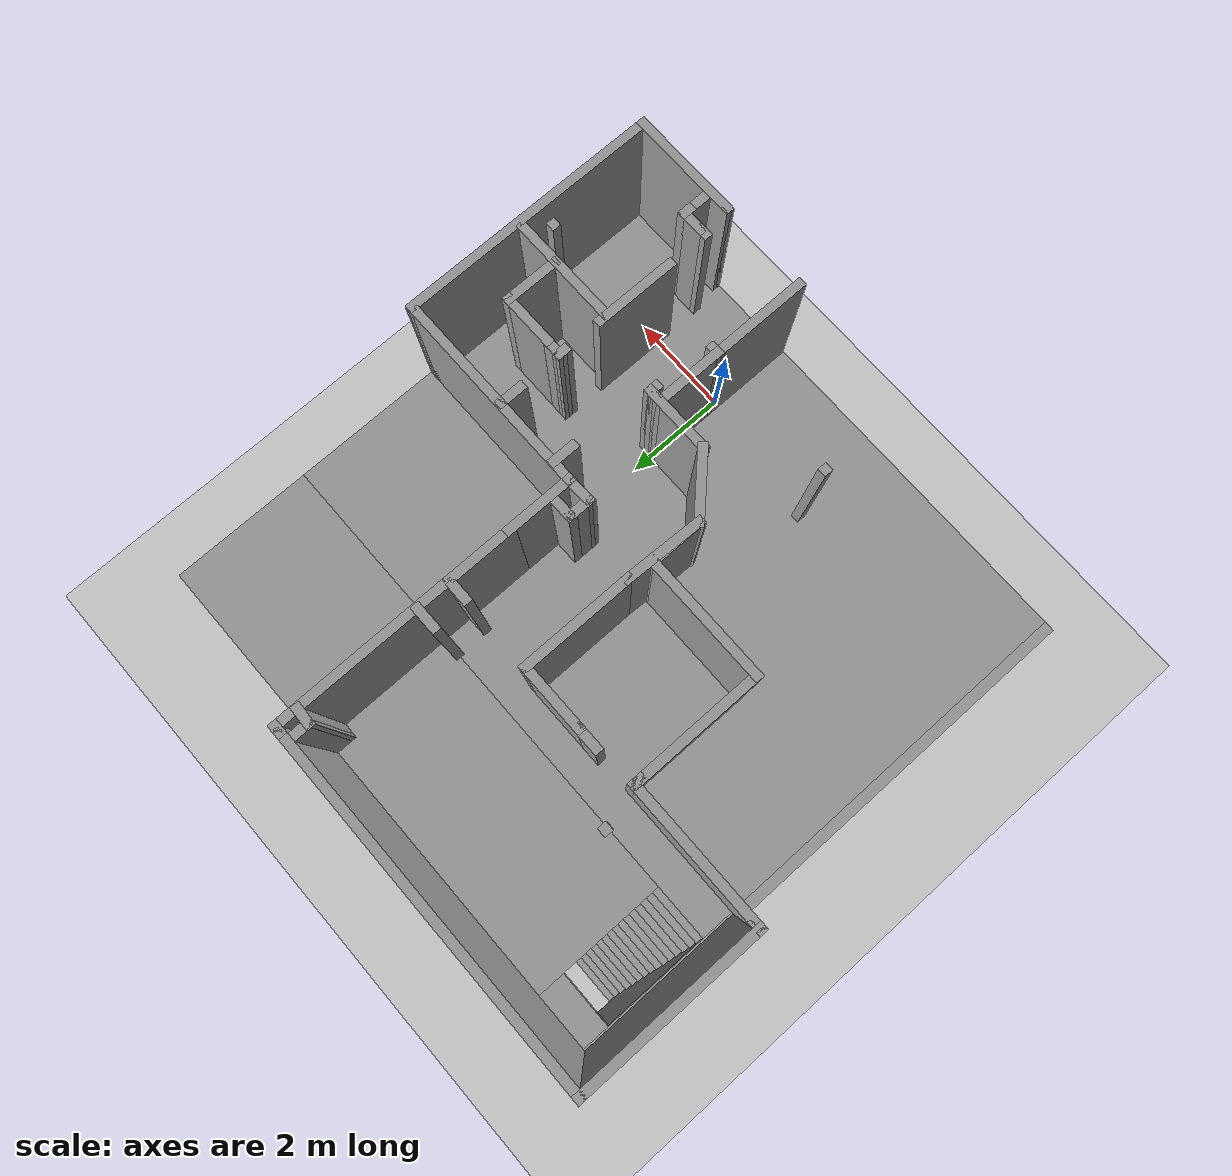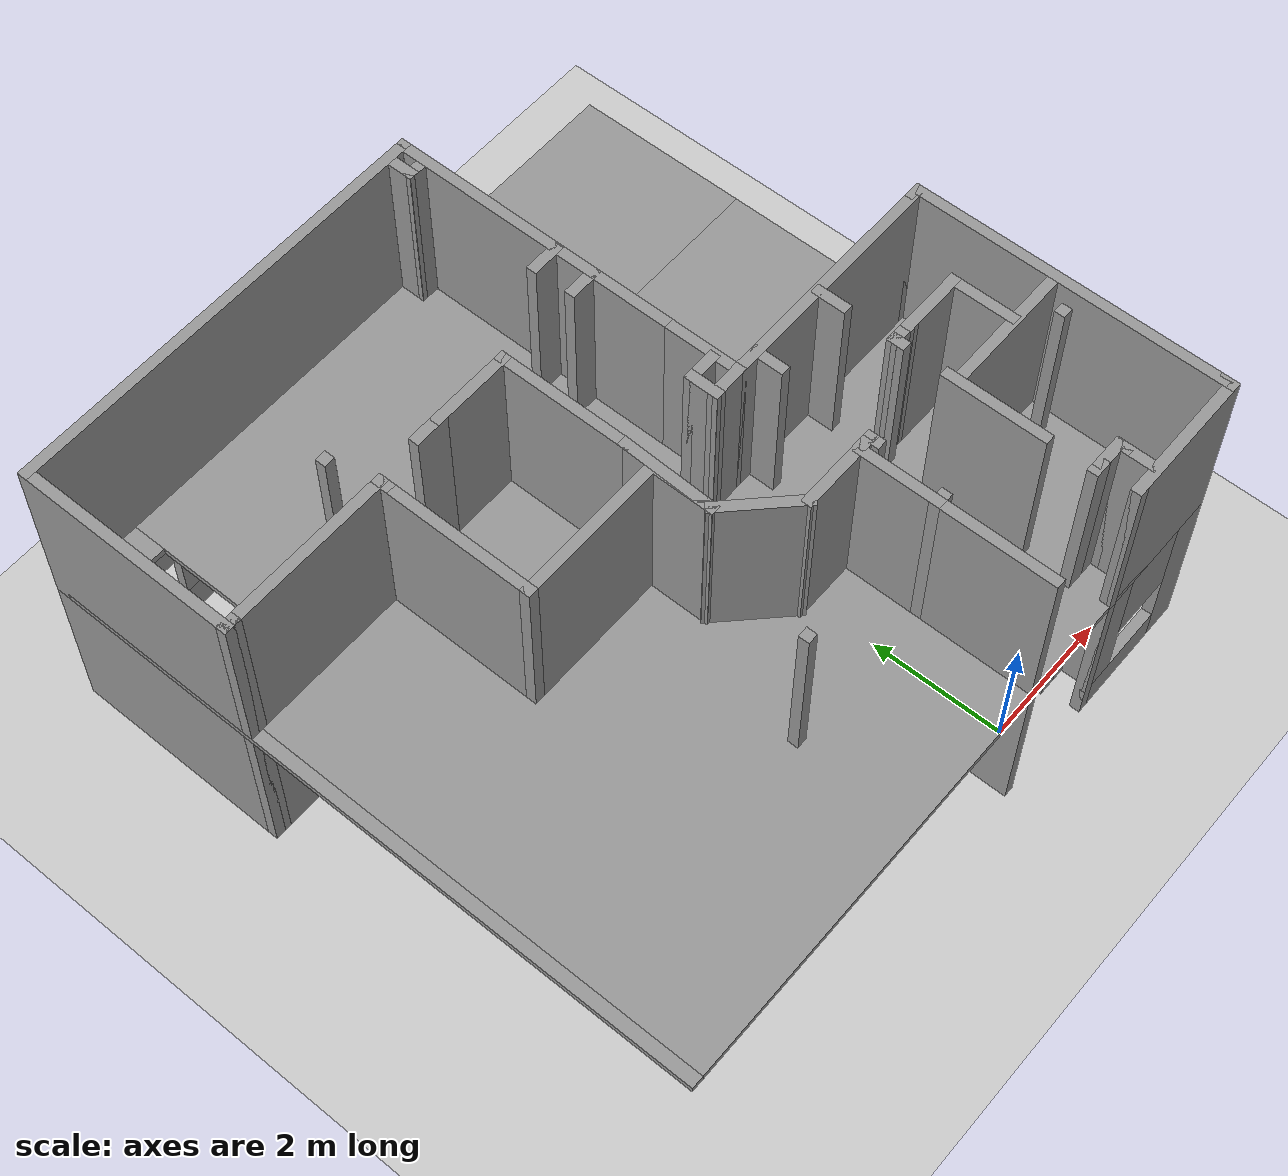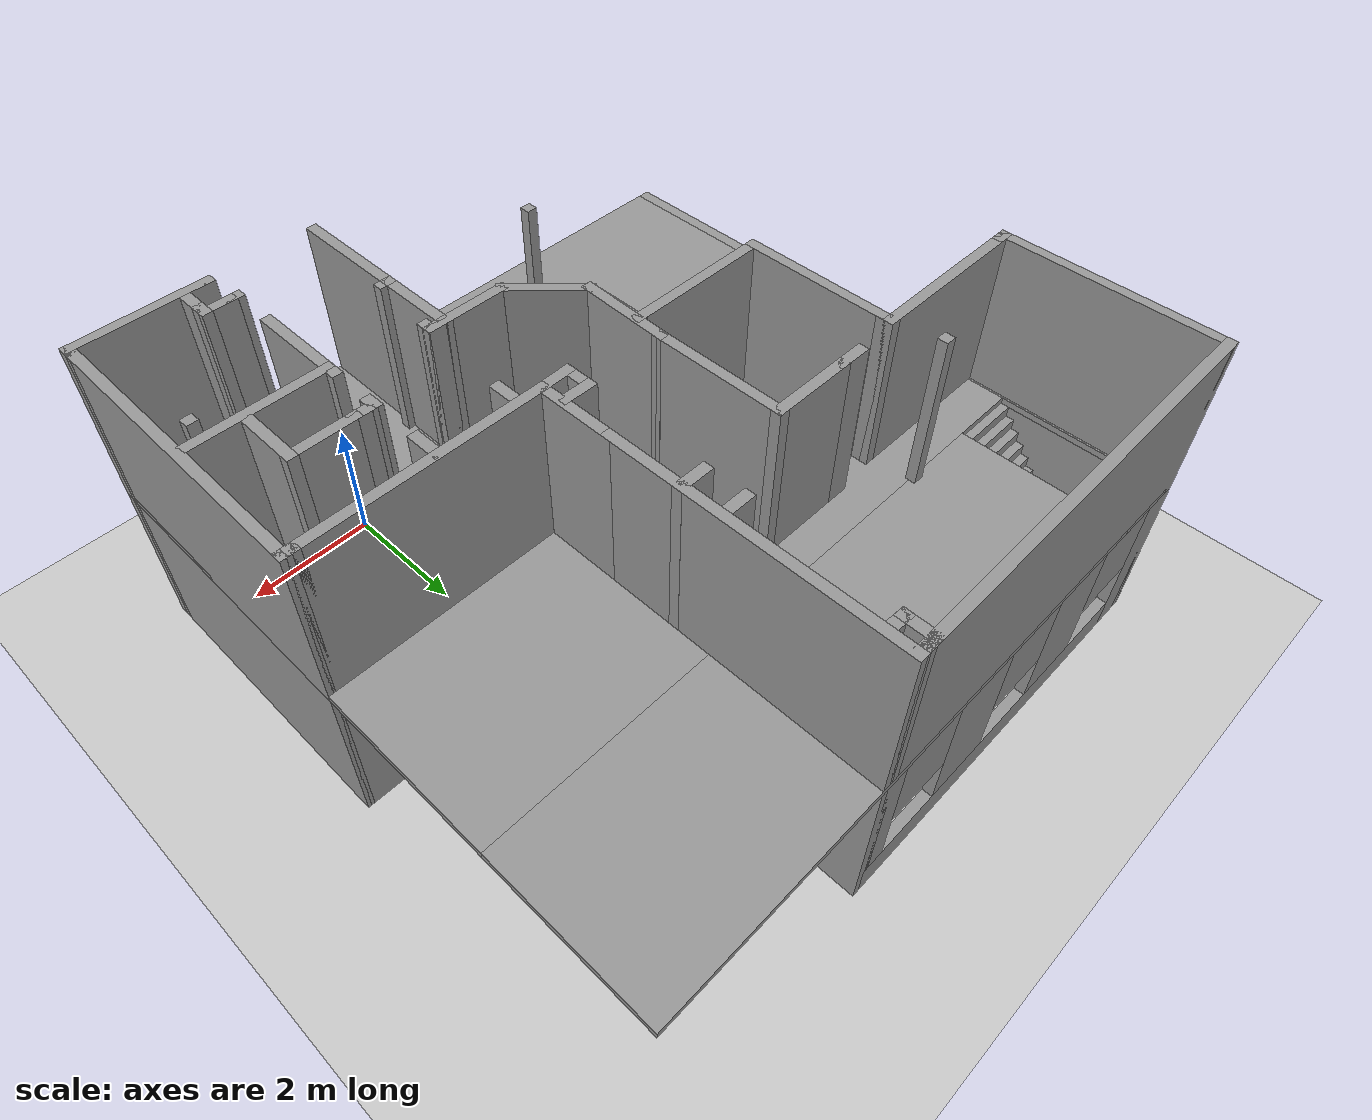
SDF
<?xml version="1.0" ?>
<sdf version="1.5">
  <world name="default">
    <!-- A global light source -->
    <include>
      <uri>model://sun</uri>
    </include>
    <!-- A ground plane -->
    <include>
      <uri>model://ground_plane</uri>
    </include>

    <include>
      <uri>model://TwoStoreyBuilding</uri>
      <pose> -2.013952 4.307400 0 0 0 0 </pose>
    </include>

    <physics name='default_physics' default='0' type='ode'>
      <gravity>0 0 -9.8066</gravity>
      <ode>
        <solver>
          <type>quick</type>
          <iters>10</iters>
          <sor>1.3</sor>
          <use_dynamic_moi_rescaling>0</use_dynamic_moi_rescaling>
        </solver>
        <constraints>
          <cfm>0</cfm>
          <erp>0.2</erp>
          <contact_max_correcting_vel>100</contact_max_correcting_vel>
          <contact_surface_layer>0.001</contact_surface_layer>
        </constraints>
      </ode>
      <max_step_size>0.004</max_step_size>
      <real_time_factor>1</real_time_factor>
      <real_time_update_rate>250</real_time_update_rate>
      <magnetic_field>6.0e-6 2.3e-5 -4.2e-5</magnetic_field>
    </physics>
  </world>
</sdf>
